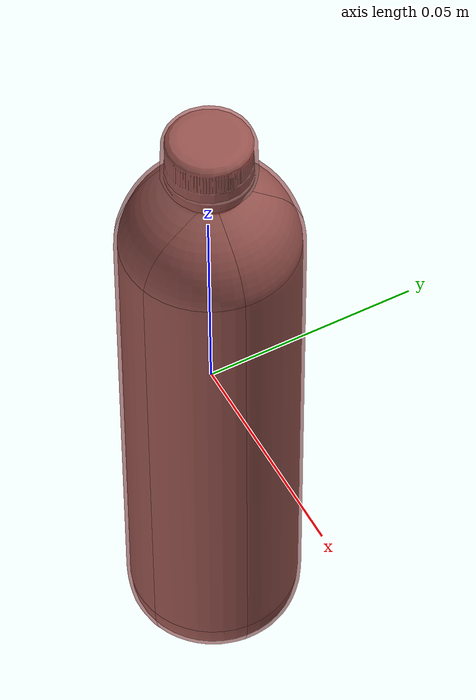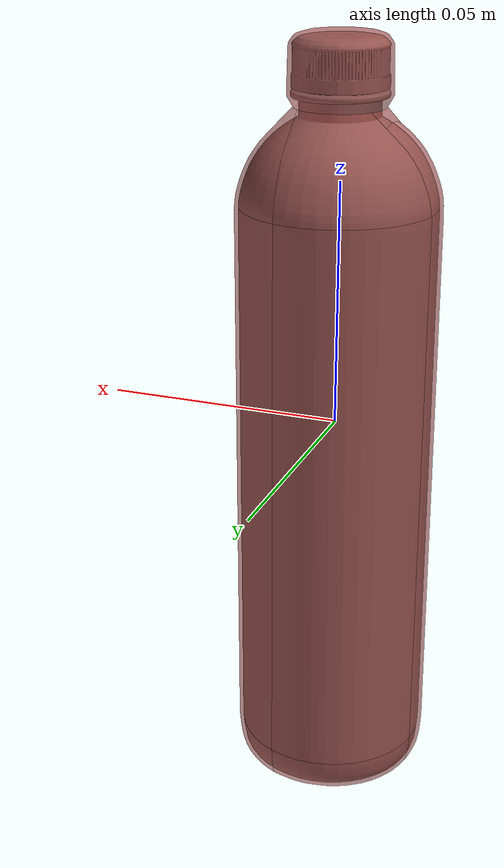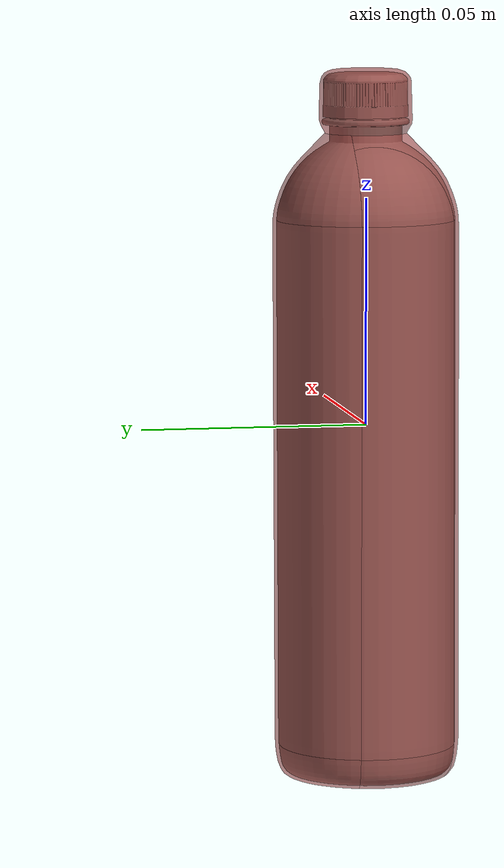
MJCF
<mujoco model="bottled_drink_11">
  <asset>
    <mesh file="visual/model_normalized_0.obj" name="model_normalized_0_vis" scale="0.15499999999999997 0.15499999999999997 0.15499999999999997" refquat="1.0 0.0 0.0 0.0"/>
    <mesh file="visual/model_normalized_1.obj" name="model_normalized_1_vis" scale="0.15499999999999997 0.15499999999999997 0.15499999999999997" refquat="1.0 0.0 0.0 0.0"/>
    <mesh file="visual/model_normalized_2.obj" name="model_normalized_2_vis" scale="0.15499999999999997 0.15499999999999997 0.15499999999999997" refquat="1.0 0.0 0.0 0.0"/>
    <mesh file="visual/model_normalized_3.obj" name="model_normalized_3_vis" scale="0.15499999999999997 0.15499999999999997 0.15499999999999997" refquat="1.0 0.0 0.0 0.0"/>
    <texture type="2d" name="image0" file="visual/image0.png"/>
    <material name="aiStandardSurface1.001" texture="image0" specular="0.5" shininess="0.359999993"/>
    <material name="aiStandardSurface3.001" texture="image0" specular="0.5" shininess="0.359999993"/>
    <material name="aiStandardSurface6" texture="image0" specular="0.5" shininess="0.359999993"/>
    <material name="aiStandardSurface7" texture="image0" specular="0.5" shininess="0.359999993"/>
    <mesh file="collision/collision_mesh_collision_0.obj" name="bottled_collision_mesh_0" scale="0.15499999999999997 0.15499999999999997 0.15499999999999997" refquat="1.0 0.0 0.0 0.0"/>
    <mesh file="collision/collision_mesh_collision_1.obj" name="bottled_collision_mesh_1" scale="0.15499999999999997 0.15499999999999997 0.15499999999999997" refquat="1.0 0.0 0.0 0.0"/>
    <mesh file="collision/collision_mesh_collision_2.obj" name="bottled_collision_mesh_2" scale="0.15499999999999997 0.15499999999999997 0.15499999999999997" refquat="1.0 0.0 0.0 0.0"/>
    <mesh file="collision/collision_mesh_collision_3.obj" name="bottled_collision_mesh_3" scale="0.15499999999999997 0.15499999999999997 0.15499999999999997" refquat="1.0 0.0 0.0 0.0"/>
    <mesh file="collision/collision_mesh_collision_4.obj" name="bottled_collision_mesh_4" scale="0.15499999999999997 0.15499999999999997 0.15499999999999997" refquat="1.0 0.0 0.0 0.0"/>
    <mesh file="collision/collision_mesh_collision_5.obj" name="bottled_collision_mesh_5" scale="0.15499999999999997 0.15499999999999997 0.15499999999999997" refquat="1.0 0.0 0.0 0.0"/>
  </asset>
  <default>
    <default class="region">
      <geom group="1" conaffinity="0" contype="0" rgba="0 1 0 0"/>
    </default>
    <default class="collision">
      <geom group="0" rgba="0.5 0 0 0.5" density="1000.0"/>
    </default>
  </default>
  <worldbody>
    <body>
      <body name="object">
        <geom solimp="0.998 0.998 0.001" solref="0.001 1" density="100" friction="0.95 0.3 0.1" type="mesh" mesh="model_normalized_0_vis" conaffinity="0" contype="0" group="1" material="aiStandardSurface7"/>
        <geom solimp="0.998 0.998 0.001" solref="0.001 1" density="100" friction="0.95 0.3 0.1" type="mesh" mesh="model_normalized_1_vis" conaffinity="0" contype="0" group="1" material="aiStandardSurface6"/>
        <geom solimp="0.998 0.998 0.001" solref="0.001 1" density="100" friction="0.95 0.3 0.1" type="mesh" mesh="model_normalized_2_vis" conaffinity="0" contype="0" group="1" material="aiStandardSurface1.001"/>
        <geom solimp="0.998 0.998 0.001" solref="0.001 1" density="100" friction="0.95 0.3 0.1" type="mesh" mesh="model_normalized_3_vis" conaffinity="0" contype="0" group="1" material="aiStandardSurface3.001"/>
        <geom class="region" name="reg_bbox" type="box" pos="7.160999999995115e-07 3.4797499999968114e-07 7.88802750000006e-05" size="0.02058918475 0.020566068824999995 0.07826532567499998"/>
        <geom mesh="bottled_collision_mesh_0" type="mesh" class="collision"/>
        <geom mesh="bottled_collision_mesh_1" type="mesh" class="collision"/>
        <geom mesh="bottled_collision_mesh_2" type="mesh" class="collision"/>
        <geom mesh="bottled_collision_mesh_3" type="mesh" class="collision"/>
        <geom mesh="bottled_collision_mesh_4" type="mesh" class="collision"/>
        <geom mesh="bottled_collision_mesh_5" type="mesh" class="collision"/>
      </body>
    </body>
  </worldbody>
</mujoco>
